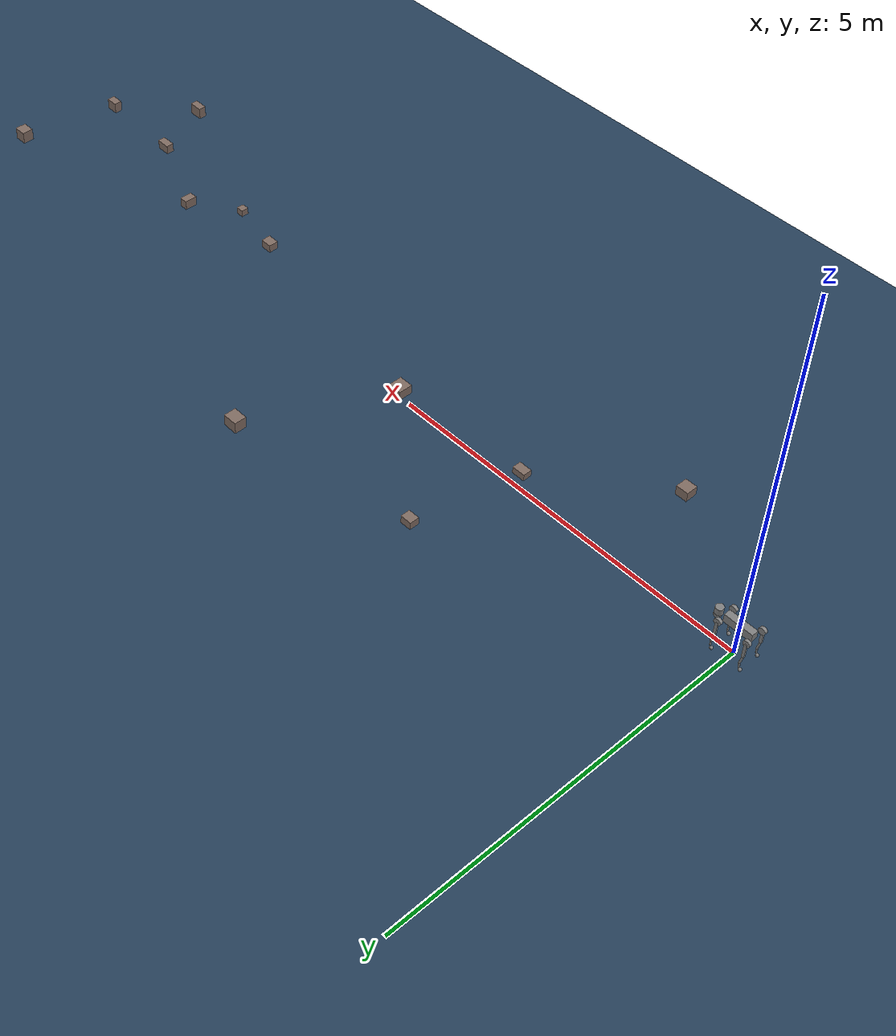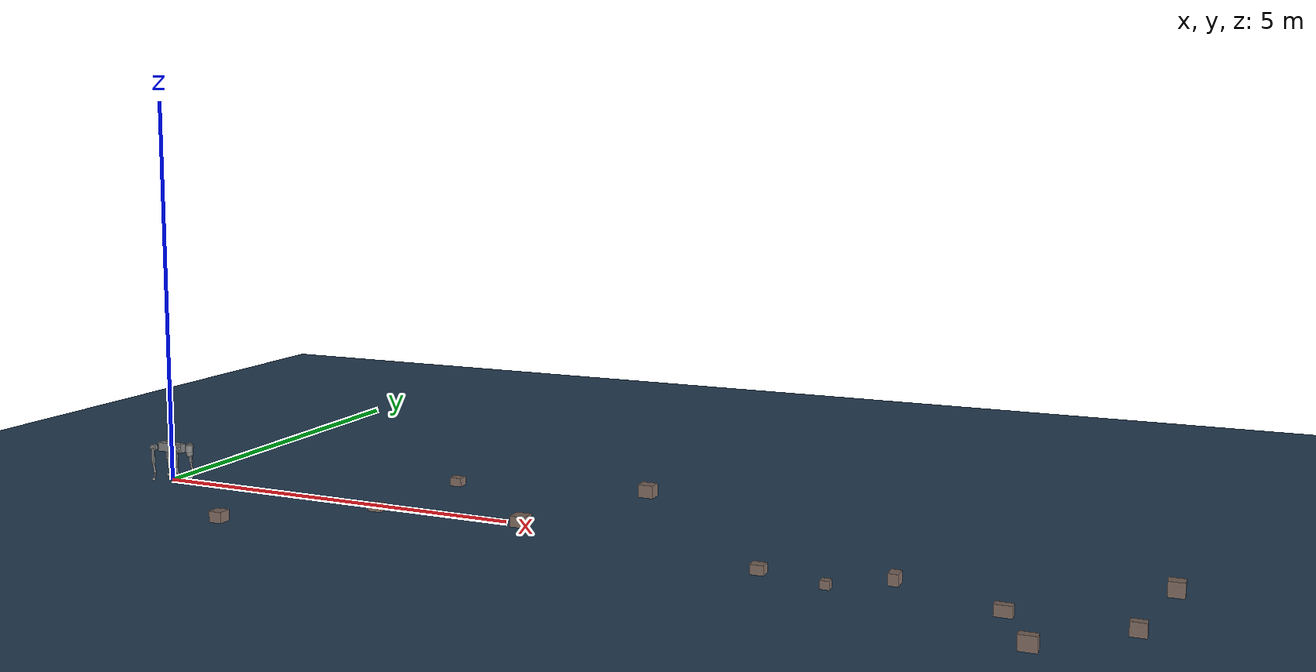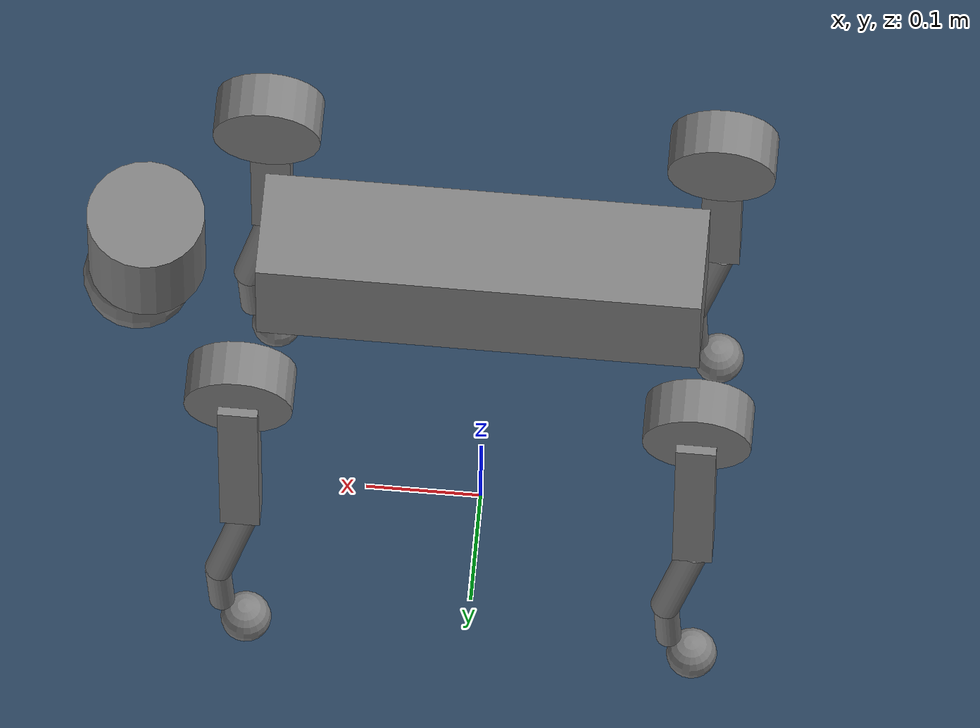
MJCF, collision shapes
<mujoco model="go2 obstacles easy">
  <include file="go2_model/go2.xml"/>
  <statistic center="0 0 0.1" extent="0.8"/>
  <visual>
    <headlight diffuse="0.6 0.6 0.6" ambient="0.3 0.3 0.3" specular="0 0 0"/>
    <rgba haze="0.15 0.25 0.35 1"/>
    <global azimuth="-130" elevation="-20"/>
  </visual>
  <asset>
    <texture type="skybox" builtin="gradient" rgb1="0.3 0.5 0.7" rgb2="0 0 0"
             width="512" height="3072"/>
    <texture type="2d" name="groundplane" builtin="checker" mark="edge"
             rgb1="0.2 0.3 0.4" rgb2="0.1 0.2 0.3"
             markrgb="0.8 0.8 0.8" width="300" height="300"/>
    <material name="groundplane" texture="groundplane" texuniform="true"
              texrepeat="5 5" reflectance="0.2"/>
    <material name="rampmat" rgba="0.45 0.45 0.55 1"/>
    <material name="stepmat" rgba="0.5 0.42 0.38 1"/>
  </asset>
  <worldbody>
    <light pos="0 0 1.5" dir="0 0 -1" directional="true"/>
    <!-- Flat field -->
    <geom name="floor" type="plane" size="0 0 0.05" material="groundplane"/>
    <geom name="obs_0" type="box" pos="9.1435 -0.8288 0.0472" size="0.0520 0.0508 0.0472" material="stepmat"/>
    <geom name="obs_1" type="box" pos="12.4531 0.3839 0.0837" size="0.0865 0.0772 0.0837" material="stepmat"/>
    <geom name="obs_2" type="box" pos="11.2902 -1.7901 0.0803" size="0.0929 0.0517 0.0803" material="stepmat"/>
    <geom name="obs_3" type="box" pos="3.6079 1.3074 0.0548" size="0.0771 0.0650 0.0548" material="stepmat"/>
    <geom name="obs_4" type="box" pos="1.8398 -1.3526 0.0675" size="0.0835 0.0824 0.0675" material="stepmat"/>
    <geom name="obs_5" type="box" pos="6.1041 1.7900 0.0817" size="0.0990 0.0843 0.0817" material="stepmat"/>
    <geom name="obs_6" type="box" pos="9.7614 -0.3999 0.0656" size="0.0568 0.0861 0.0656" material="stepmat"/>
    <geom name="obs_7" type="box" pos="5.2229 -0.0510 0.0657" size="0.0945 0.0967 0.0657" material="stepmat"/>
    <geom name="obs_8" type="box" pos="8.3584 -0.6413 0.0555" size="0.0797 0.0669 0.0555" material="stepmat"/>
    <geom name="obs_9" type="box" pos="12.1833 -0.9822 0.0744" size="0.0812 0.0542 0.0744" material="stepmat"/>
    <geom name="obs_10" type="box" pos="10.9452 -0.9383 0.0627" size="0.0938 0.0529 0.0627" material="stepmat"/>
    <geom name="obs_11" type="box" pos="3.3034 -0.1788 0.0472" size="0.0898 0.0615 0.0472" material="stepmat"/>
  </worldbody>
</mujoco>

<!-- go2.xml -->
<mujoco model="go2">
  <compiler angle="radian" meshdir="." autolimits="true"/>

  <option cone="elliptic" impratio="100"/>

  <default>
    <default class="go2">
      <geom friction="0.6" margin="0.001" condim="1"/>
      <joint axis="0 1 0" damping="2" armature="0.01" frictionloss="0.2"/>
      <motor ctrlrange="-23.7 23.7"/>
      <default class="abduction">
        <joint axis="1 0 0" range="-1.0472 1.0472"/>
      </default>
      <default class="hip">
        <default class="front_hip">
          <joint range="-1.5708 3.4907"/>
        </default>
        <default class="back_hip">
          <joint range="-0.5236 4.5379"/>
        </default>
      </default>
      <default class="knee">
        <joint range="-2.7227 -0.83776"/>
        <motor ctrlrange="-45.43 45.43"/>
      </default>
      <default class="visual">
        <geom type="mesh" contype="0" conaffinity="0" group="2"/>
      </default>
      <default class="collision">
        <geom group="3"/>
        <default class="foot">
          <geom size="0.022" pos="-0.002 0 -0.213" priority="1" solimp="0.015 1 0.022" condim="6"
            friction="0.8 0.02 0.01"/>
        </default>
      </default>
    </default>
  </default>

  <asset>
    <material name="metal" rgba=".9 .95 .95 1"/>
    <material name="black" rgba="0 0 0 1"/>
    <material name="white" rgba="1 1 1 1"/>
    <material name="gray" rgba="0.671705 0.692426 0.774270 1"/>

    <mesh file="base_0.obj"/>
    <mesh file="base_1.obj"/>
    <mesh file="base_2.obj"/>
    <mesh file="base_3.obj"/>
    <mesh file="base_4.obj"/>
    <mesh file="hip_0.obj"/>
    <mesh file="hip_1.obj"/>
    <mesh file="thigh_0.obj"/>
    <mesh file="thigh_1.obj"/>
    <mesh file="thigh_mirror_0.obj"/>
    <mesh file="thigh_mirror_1.obj"/>
    <mesh file="calf_0.obj"/>
    <mesh file="calf_1.obj"/>
    <mesh file="calf_mirror_0.obj"/>
    <mesh file="calf_mirror_1.obj"/>
    <mesh file="foot.obj"/>
  </asset>

  <worldbody>
    <body name="base" pos="0 0 0.445" childclass="go2">
      <inertial pos="0.021112 0 -0.005366" quat="-0.000543471 0.713435 -0.00173769 0.700719" mass="6.921"
        diaginertia="0.107027 0.0980771 0.0244531"/>
      <freejoint/>
      <geom mesh="base_0" material="black" class="visual"/>
      <geom mesh="base_1" material="black" class="visual"/>
      <geom mesh="base_2" material="black" class="visual"/>
      <geom mesh="base_3" material="white" class="visual"/>
      <geom mesh="base_4" material="gray" class="visual"/>
      <geom size="0.1881 0.04675 0.057" type="box" class="collision"/>
      <geom size="0.05 0.045" pos="0.285 0 0.01" type="cylinder" class="collision"/>
      <geom size="0.047" pos="0.293 0 -0.06" class="collision"/>
      <site name="imu" pos="-0.02557 0 0.04232"/>
      <body name="FL_hip" pos="0.1934 0.0465 0">
        <inertial pos="-0.0054 0.00194 -0.000105" quat="0.497014 0.499245 0.505462 0.498237" mass="0.678"
          diaginertia="0.00088403 0.000596003 0.000479967"/>
        <joint name="FL_hip_joint" class="abduction"/>
        <geom mesh="hip_0" material="metal" class="visual"/>
        <geom mesh="hip_1" material="gray" class="visual"/>
        <geom size="0.046 0.02" pos="0 0.08 0" quat="1 1 0 0" type="cylinder" class="collision"/>
        <body name="FL_thigh" pos="0 0.0955 0">
          <inertial pos="-0.00374 -0.0223 -0.0327" quat="0.829533 0.0847635 -0.0200632 0.551623" mass="1.152"
            diaginertia="0.00594973 0.00584149 0.000878787"/>
          <joint name="FL_thigh_joint" class="front_hip"/>
          <geom mesh="thigh_0" material="metal" class="visual"/>
          <geom mesh="thigh_1" material="gray" class="visual"/>
          <geom size="0.1065 0.01225 0.017" pos="0 0 -0.1065" quat="0.707107 0 0.707107 0" type="box" class="collision"/>
          <body name="FL_calf" pos="0 0 -0.213">
            <inertial pos="0.00629595 -0.000622121 -0.141417" quat="0.710672 0.00154099 -0.00450087 0.703508"
              mass="0.241352" diaginertia="0.0014901 0.00146356 5.31397e-05"/>
            <joint name="FL_calf_joint" class="knee"/>
            <geom mesh="calf_0" material="gray" class="visual"/>
            <geom mesh="calf_1" material="black" class="visual"/>
            <geom size="0.012 0.06" pos="0.008 0 -0.06" quat="0.994493 0 -0.104807 0" type="cylinder" class="collision"/>
            <geom size="0.011 0.0325" pos="0.02 0 -0.148" quat="0.999688 0 0.0249974 0" type="cylinder" class="collision"/>
            <geom pos="0 0 -0.213" mesh="foot" class="visual" material="black"/>
            <geom name="FL" class="foot"/>
          </body>
        </body>
      </body>
      <body name="FR_hip" pos="0.1934 -0.0465 0">
        <inertial pos="-0.0054 -0.00194 -0.000105" quat="0.498237 0.505462 0.499245 0.497014" mass="0.678"
          diaginertia="0.00088403 0.000596003 0.000479967"/>
        <joint name="FR_hip_joint" class="abduction"/>
        <geom mesh="hip_0" material="metal" class="visual" quat="4.63268e-05 1 0 0"/>
        <geom mesh="hip_1" material="gray" class="visual" quat="4.63268e-05 1 0 0"/>
        <geom size="0.046 0.02" pos="0 -0.08 0" quat="0.707107 0.707107 0 0" type="cylinder" class="collision"/>
        <body name="FR_thigh" pos="0 -0.0955 0">
          <inertial pos="-0.00374 0.0223 -0.0327" quat="0.551623 -0.0200632 0.0847635 0.829533" mass="1.152"
            diaginertia="0.00594973 0.00584149 0.000878787"/>
          <joint name="FR_thigh_joint" class="front_hip"/>
          <geom mesh="thigh_mirror_0" material="metal" class="visual"/>
          <geom mesh="thigh_mirror_1" material="gray" class="visual"/>
          <geom size="0.1065 0.01225 0.017" pos="0 0 -0.1065" quat="0.707107 0 0.707107 0" type="box" class="collision"/>
          <body name="FR_calf" pos="0 0 -0.213">
            <inertial pos="0.00629595 0.000622121 -0.141417" quat="0.703508 -0.00450087 0.00154099 0.710672"
              mass="0.241352" diaginertia="0.0014901 0.00146356 5.31397e-05"/>
            <joint name="FR_calf_joint" class="knee"/>
            <geom mesh="calf_mirror_0" material="gray" class="visual"/>
            <geom mesh="calf_mirror_1" material="black" class="visual"/>
            <geom size="0.013 0.06" pos="0.01 0 -0.06" quat="0.995004 0 -0.0998334 0" type="cylinder" class="collision"/>
            <geom size="0.011 0.0325" pos="0.02 0 -0.148" quat="0.999688 0 0.0249974 0" type="cylinder" class="collision"/>
            <geom pos="0 0 -0.213" mesh="foot" class="visual" material="black"/>
            <geom name="FR" class="foot"/>
          </body>
        </body>
      </body>
      <body name="RL_hip" pos="-0.1934 0.0465 0">
        <inertial pos="0.0054 0.00194 -0.000105" quat="0.505462 0.498237 0.497014 0.499245" mass="0.678"
          diaginertia="0.00088403 0.000596003 0.000479967"/>
        <joint name="RL_hip_joint" class="abduction"/>
        <geom mesh="hip_0" material="metal" class="visual" quat="4.63268e-05 0 1 0"/>
        <geom mesh="hip_1" material="gray" class="visual" quat="4.63268e-05 0 1 0"/>
        <geom size="0.046 0.02" pos="0 0.08 0" quat="0.707107 0.707107 0 0" type="cylinder" class="collision"/>
        <body name="RL_thigh" pos="0 0.0955 0">
          <inertial pos="-0.00374 -0.0223 -0.0327" quat="0.829533 0.0847635 -0.0200632 0.551623" mass="1.152"
            diaginertia="0.00594973 0.00584149 0.000878787"/>
          <joint name="RL_thigh_joint" class="back_hip"/>
          <geom mesh="thigh_0" material="metal" class="visual"/>
          <geom mesh="thigh_1" material="gray" class="visual"/>
          <geom size="0.1065 0.01225 0.017" pos="0 0 -0.1065" quat="0.707107 0 0.707107 0" type="box" class="collision"/>
          <body name="RL_calf" pos="0 0 -0.213">
            <inertial pos="0.00629595 -0.000622121 -0.141417" quat="0.710672 0.00154099 -0.00450087 0.703508"
              mass="0.241352" diaginertia="0.0014901 0.00146356 5.31397e-05"/>
            <joint name="RL_calf_joint" class="knee"/>
            <geom mesh="calf_0" material="gray" class="visual"/>
            <geom mesh="calf_1" material="black" class="visual"/>
            <geom size="0.013 0.06" pos="0.01 0 -0.06" quat="0.995004 0 -0.0998334 0" type="cylinder" class="collision"/>
            <geom size="0.011 0.0325" pos="0.02 0 -0.148" quat="0.999688 0 0.0249974 0" type="cylinder" class="collision"/>
            <geom pos="0 0 -0.213" mesh="foot" class="visual" material="black"/>
            <geom name="RL" class="foot"/>
          </body>
        </body>
      </body>
      <body name="RR_hip" pos="-0.1934 -0.0465 0">
        <inertial pos="0.0054 -0.00194 -0.000105" quat="0.499245 0.497014 0.498237 0.505462" mass="0.678"
          diaginertia="0.00088403 0.000596003 0.000479967"/>
        <joint name="RR_hip_joint" class="abduction"/>
        <geom mesh="hip_0" material="metal" class="visual" quat="2.14617e-09 4.63268e-05 4.63268e-05 -1"/>
        <geom mesh="hip_1" material="gray" class="visual" quat="2.14617e-09 4.63268e-05 4.63268e-05 -1"/>
        <geom size="0.046 0.02" pos="0 -0.08 0" quat="0.707107 0.707107 0 0" type="cylinder" class="collision"/>
        <body name="RR_thigh" pos="0 -0.0955 0">
          <inertial pos="-0.00374 0.0223 -0.0327" quat="0.551623 -0.0200632 0.0847635 0.829533" mass="1.152"
            diaginertia="0.00594973 0.00584149 0.000878787"/>
          <joint name="RR_thigh_joint" class="back_hip"/>
          <geom mesh="thigh_mirror_0" material="metal" class="visual"/>
          <geom mesh="thigh_mirror_1" material="gray" class="visual"/>
          <geom size="0.1065 0.01225 0.017" pos="0 0 -0.1065" quat="0.707107 0 0.707107 0" type="box" class="collision"/>
          <body name="RR_calf" pos="0 0 -0.213">
            <inertial pos="0.00629595 0.000622121 -0.141417" quat="0.703508 -0.00450087 0.00154099 0.710672"
              mass="0.241352" diaginertia="0.0014901 0.00146356 5.31397e-05"/>
            <joint name="RR_calf_joint" class="knee"/>
            <geom mesh="calf_mirror_0" material="gray" class="visual"/>
            <geom mesh="calf_mirror_1" material="black" class="visual"/>
            <geom size="0.013 0.06" pos="0.01 0 -0.06" quat="0.995004 0 -0.0998334 0" type="cylinder" class="collision"/>
            <geom size="0.011 0.0325" pos="0.02 0 -0.148" quat="0.999688 0 0.0249974 0" type="cylinder" class="collision"/>
            <geom pos="0 0 -0.213" mesh="foot" class="visual" material="black"/>
            <geom name="RR" class="foot"/>
          </body>
        </body>
      </body>
    </body>
  </worldbody>

  <actuator>
    <motor class="abduction" name="FL_hip" joint="FL_hip_joint"/>
    <motor class="hip" name="FL_thigh" joint="FL_thigh_joint"/>
    <motor class="knee" name="FL_calf" joint="FL_calf_joint"/>
    <motor class="abduction" name="FR_hip" joint="FR_hip_joint"/>
    <motor class="hip" name="FR_thigh" joint="FR_thigh_joint"/>
    <motor class="knee" name="FR_calf" joint="FR_calf_joint"/>
    <motor class="abduction" name="RL_hip" joint="RL_hip_joint"/>
    <motor class="hip" name="RL_thigh" joint="RL_thigh_joint"/>
    <motor class="knee" name="RL_calf" joint="RL_calf_joint"/>
    <motor class="abduction" name="RR_hip" joint="RR_hip_joint"/>
    <motor class="hip" name="RR_thigh" joint="RR_thigh_joint"/>
    <motor class="knee" name="RR_calf" joint="RR_calf_joint"/>
  </actuator>

  <keyframe>
    <key name="home" qpos="0 0 0.27 1 0 0 0 0 0.9 -1.8 0 0.9 -1.8 0 0.9 -1.8 0 0.9 -1.8"
      ctrl="0 0.9 -1.8 0 0.9 -1.8 0 0.9 -1.8 0 0.9 -1.8"/>
  </keyframe>
</mujoco>
